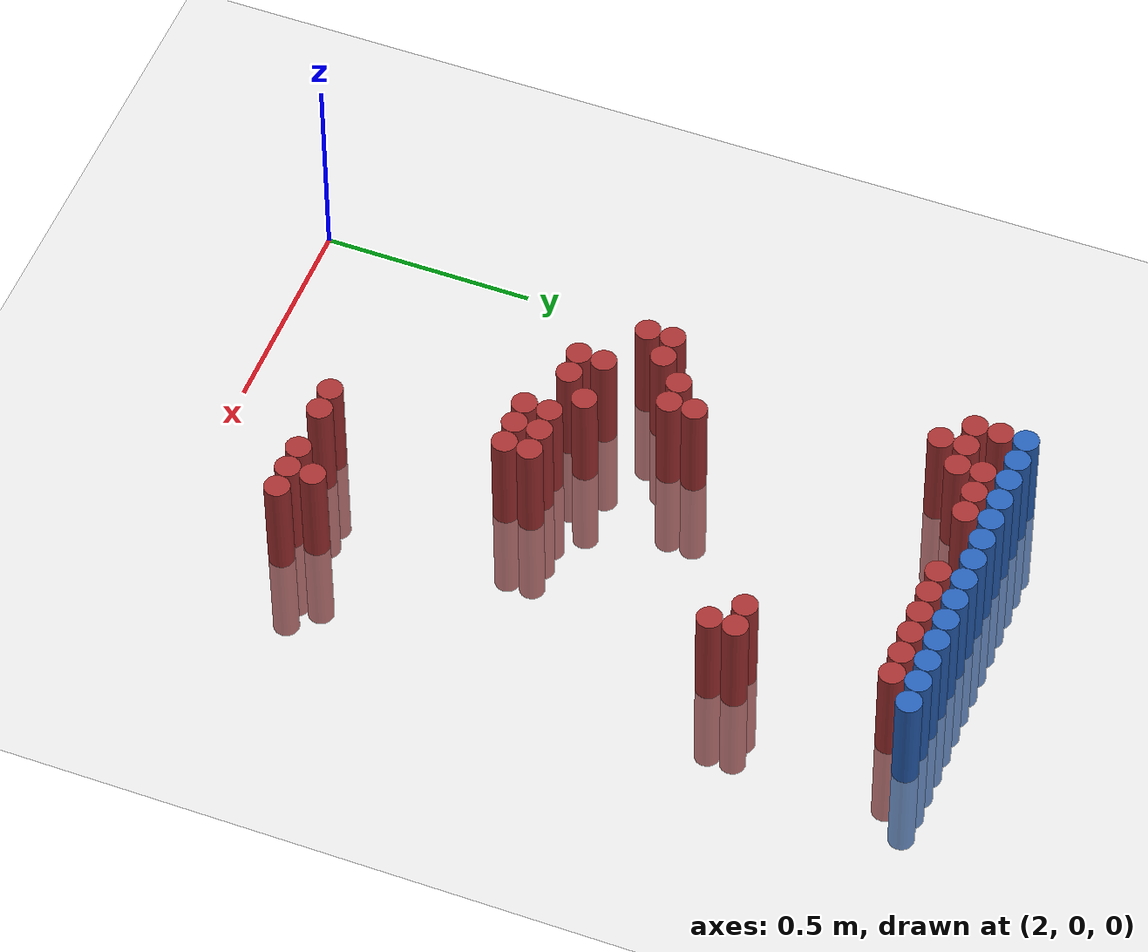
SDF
<sdf version="1.6">
 <world name="default">
  <model name="ground_plane">
   <static>1</static>
   <link name="link">
    <collision name="collision">
     <geometry><plane><normal>0 0 1</normal><size>100 100</size></plane></geometry>
     <surface><friction><ode><mu>100</mu><mu2>50</mu2></ode></friction></surface>
    </collision>
    <visual name="visual">
     <cast_shadows>0</cast_shadows>
     <geometry><plane><normal>0 0 1</normal><size>100 100</size></plane></geometry>
     <material>
      <script><uri>file://media/materials/scripts/gazebo.material</uri><name>Gazebo/Grey</name></script>
     </material>
    </visual>
   </link>
  </model>
  <model name="unit_cylinder_97">
   <static>1</static>
   <pose>2.190000 1.770000 0.000000 0.000000 0.000000 0.000000</pose>
   <link name="link">
    <inertial>
     <mass>1</mass>
     <inertia><ixx>0.145833</ixx><ixy>0</ixy><ixz>0</ixz><iyy>0.145833</iyy><iyz>0</iyz><izz>0.125</izz></inertia>
    </inertial>
    <collision name="collision">
     <geometry><cylinder><radius>0.030000</radius><length>0.5</length></cylinder></geometry>
    </collision>
    <visual name="visual">
     <geometry><cylinder><radius>0.030000</radius><length>0.5</length></cylinder></geometry>
     <material>
      <ambient>0.152000 0.379000 0.720000 1</ambient>
      <diffuse>0.152000 0.379000 0.720000 1</diffuse>
     </material>
     <material>
      <script><name>Gazebo/Grey</name><uri>file://media/materials/scripts/gazebo.material</uri></script>
     </material>
    </visual>
   </link>
  </model>
  <model name="unit_cylinder_98">
   <static>1</static>
   <pose>2.250000 1.770000 0.000000 0.000000 0.000000 0.000000</pose>
   <link name="link">
    <inertial>
     <mass>1</mass>
     <inertia><ixx>0.145833</ixx><ixy>0</ixy><ixz>0</ixz><iyy>0.145833</iyy><iyz>0</iyz><izz>0.125</izz></inertia>
    </inertial>
    <collision name="collision">
     <geometry><cylinder><radius>0.030000</radius><length>0.5</length></cylinder></geometry>
    </collision>
    <visual name="visual">
     <geometry><cylinder><radius>0.030000</radius><length>0.5</length></cylinder></geometry>
     <material>
      <ambient>0.152000 0.379000 0.720000 1</ambient>
      <diffuse>0.152000 0.379000 0.720000 1</diffuse>
     </material>
     <material>
      <script><name>Gazebo/Grey</name><uri>file://media/materials/scripts/gazebo.material</uri></script>
     </material>
    </visual>
   </link>
  </model>
  <model name="unit_cylinder_99">
   <static>1</static>
   <pose>2.310000 1.770000 0.000000 0.000000 0.000000 0.000000</pose>
   <link name="link">
    <inertial>
     <mass>1</mass>
     <inertia><ixx>0.145833</ixx><ixy>0</ixy><ixz>0</ixz><iyy>0.145833</iyy><iyz>0</iyz><izz>0.125</izz></inertia>
    </inertial>
    <collision name="collision">
     <geometry><cylinder><radius>0.030000</radius><length>0.5</length></cylinder></geometry>
    </collision>
    <visual name="visual">
     <geometry><cylinder><radius>0.030000</radius><length>0.5</length></cylinder></geometry>
     <material>
      <ambient>0.152000 0.379000 0.720000 1</ambient>
      <diffuse>0.152000 0.379000 0.720000 1</diffuse>
     </material>
     <material>
      <script><name>Gazebo/Grey</name><uri>file://media/materials/scripts/gazebo.material</uri></script>
     </material>
    </visual>
   </link>
  </model>
  <model name="unit_cylinder_100">
   <static>1</static>
   <pose>2.370000 1.770000 0.000000 0.000000 0.000000 0.000000</pose>
   <link name="link">
    <inertial>
     <mass>1</mass>
     <inertia><ixx>0.145833</ixx><ixy>0</ixy><ixz>0</ixz><iyy>0.145833</iyy><iyz>0</iyz><izz>0.125</izz></inertia>
    </inertial>
    <collision name="collision">
     <geometry><cylinder><radius>0.030000</radius><length>0.5</length></cylinder></geometry>
    </collision>
    <visual name="visual">
     <geometry><cylinder><radius>0.030000</radius><length>0.5</length></cylinder></geometry>
     <material>
      <ambient>0.152000 0.379000 0.720000 1</ambient>
      <diffuse>0.152000 0.379000 0.720000 1</diffuse>
     </material>
     <material>
      <script><name>Gazebo/Grey</name><uri>file://media/materials/scripts/gazebo.material</uri></script>
     </material>
    </visual>
   </link>
  </model>
  <model name="unit_cylinder_101">
   <static>1</static>
   <pose>2.430000 1.770000 0.000000 0.000000 0.000000 0.000000</pose>
   <link name="link">
    <inertial>
     <mass>1</mass>
     <inertia><ixx>0.145833</ixx><ixy>0</ixy><ixz>0</ixz><iyy>0.145833</iyy><iyz>0</iyz><izz>0.125</izz></inertia>
    </inertial>
    <collision name="collision">
     <geometry><cylinder><radius>0.030000</radius><length>0.5</length></cylinder></geometry>
    </collision>
    <visual name="visual">
     <geometry><cylinder><radius>0.030000</radius><length>0.5</length></cylinder></geometry>
     <material>
      <ambient>0.152000 0.379000 0.720000 1</ambient>
      <diffuse>0.152000 0.379000 0.720000 1</diffuse>
     </material>
     <material>
      <script><name>Gazebo/Grey</name><uri>file://media/materials/scripts/gazebo.material</uri></script>
     </material>
    </visual>
   </link>
  </model>
  <model name="unit_cylinder_102">
   <static>1</static>
   <pose>2.490000 1.770000 0.000000 0.000000 0.000000 0.000000</pose>
   <link name="link">
    <inertial>
     <mass>1</mass>
     <inertia><ixx>0.145833</ixx><ixy>0</ixy><ixz>0</ixz><iyy>0.145833</iyy><iyz>0</iyz><izz>0.125</izz></inertia>
    </inertial>
    <collision name="collision">
     <geometry><cylinder><radius>0.030000</radius><length>0.5</length></cylinder></geometry>
    </collision>
    <visual name="visual">
     <geometry><cylinder><radius>0.030000</radius><length>0.5</length></cylinder></geometry>
     <material>
      <ambient>0.152000 0.379000 0.720000 1</ambient>
      <diffuse>0.152000 0.379000 0.720000 1</diffuse>
     </material>
     <material>
      <script><name>Gazebo/Grey</name><uri>file://media/materials/scripts/gazebo.material</uri></script>
     </material>
    </visual>
   </link>
  </model>
  <model name="unit_cylinder_103">
   <static>1</static>
   <pose>2.550000 1.770000 0.000000 0.000000 0.000000 0.000000</pose>
   <link name="link">
    <inertial>
     <mass>1</mass>
     <inertia><ixx>0.145833</ixx><ixy>0</ixy><ixz>0</ixz><iyy>0.145833</iyy><iyz>0</iyz><izz>0.125</izz></inertia>
    </inertial>
    <collision name="collision">
     <geometry><cylinder><radius>0.030000</radius><length>0.5</length></cylinder></geometry>
    </collision>
    <visual name="visual">
     <geometry><cylinder><radius>0.030000</radius><length>0.5</length></cylinder></geometry>
     <material>
      <ambient>0.152000 0.379000 0.720000 1</ambient>
      <diffuse>0.152000 0.379000 0.720000 1</diffuse>
     </material>
     <material>
      <script><name>Gazebo/Grey</name><uri>file://media/materials/scripts/gazebo.material</uri></script>
     </material>
    </visual>
   </link>
  </model>
  <model name="unit_cylinder_104">
   <static>1</static>
   <pose>2.610000 1.770000 0.000000 0.000000 0.000000 0.000000</pose>
   <link name="link">
    <inertial>
     <mass>1</mass>
     <inertia><ixx>0.145833</ixx><ixy>0</ixy><ixz>0</ixz><iyy>0.145833</iyy><iyz>0</iyz><izz>0.125</izz></inertia>
    </inertial>
    <collision name="collision">
     <geometry><cylinder><radius>0.030000</radius><length>0.5</length></cylinder></geometry>
    </collision>
    <visual name="visual">
     <geometry><cylinder><radius>0.030000</radius><length>0.5</length></cylinder></geometry>
     <material>
      <ambient>0.152000 0.379000 0.720000 1</ambient>
      <diffuse>0.152000 0.379000 0.720000 1</diffuse>
     </material>
     <material>
      <script><name>Gazebo/Grey</name><uri>file://media/materials/scripts/gazebo.material</uri></script>
     </material>
    </visual>
   </link>
  </model>
  <model name="unit_cylinder_105">
   <static>1</static>
   <pose>2.670000 1.770000 0.000000 0.000000 0.000000 0.000000</pose>
   <link name="link">
    <inertial>
     <mass>1</mass>
     <inertia><ixx>0.145833</ixx><ixy>0</ixy><ixz>0</ixz><iyy>0.145833</iyy><iyz>0</iyz><izz>0.125</izz></inertia>
    </inertial>
    <collision name="collision">
     <geometry><cylinder><radius>0.030000</radius><length>0.5</length></cylinder></geometry>
    </collision>
    <visual name="visual">
     <geometry><cylinder><radius>0.030000</radius><length>0.5</length></cylinder></geometry>
     <material>
      <ambient>0.152000 0.379000 0.720000 1</ambient>
      <diffuse>0.152000 0.379000 0.720000 1</diffuse>
     </material>
     <material>
      <script><name>Gazebo/Grey</name><uri>file://media/materials/scripts/gazebo.material</uri></script>
     </material>
    </visual>
   </link>
  </model>
  <model name="unit_cylinder_106">
   <static>1</static>
   <pose>2.730000 1.770000 0.000000 0.000000 0.000000 0.000000</pose>
   <link name="link">
    <inertial>
     <mass>1</mass>
     <inertia><ixx>0.145833</ixx><ixy>0</ixy><ixz>0</ixz><iyy>0.145833</iyy><iyz>0</iyz><izz>0.125</izz></inertia>
    </inertial>
    <collision name="collision">
     <geometry><cylinder><radius>0.030000</radius><length>0.5</length></cylinder></geometry>
    </collision>
    <visual name="visual">
     <geometry><cylinder><radius>0.030000</radius><length>0.5</length></cylinder></geometry>
     <material>
      <ambient>0.152000 0.379000 0.720000 1</ambient>
      <diffuse>0.152000 0.379000 0.720000 1</diffuse>
     </material>
     <material>
      <script><name>Gazebo/Grey</name><uri>file://media/materials/scripts/gazebo.material</uri></script>
     </material>
    </visual>
   </link>
  </model>
  <model name="unit_cylinder_107">
   <static>1</static>
   <pose>2.790000 1.770000 0.000000 0.000000 0.000000 0.000000</pose>
   <link name="link">
    <inertial>
     <mass>1</mass>
     <inertia><ixx>0.145833</ixx><ixy>0</ixy><ixz>0</ixz><iyy>0.145833</iyy><iyz>0</iyz><izz>0.125</izz></inertia>
    </inertial>
    <collision name="collision">
     <geometry><cylinder><radius>0.030000</radius><length>0.5</length></cylinder></geometry>
    </collision>
    <visual name="visual">
     <geometry><cylinder><radius>0.030000</radius><length>0.5</length></cylinder></geometry>
     <material>
      <ambient>0.152000 0.379000 0.720000 1</ambient>
      <diffuse>0.152000 0.379000 0.720000 1</diffuse>
     </material>
     <material>
      <script><name>Gazebo/Grey</name><uri>file://media/materials/scripts/gazebo.material</uri></script>
     </material>
    </visual>
   </link>
  </model>
  <model name="unit_cylinder_108">
   <static>1</static>
   <pose>2.850000 1.770000 0.000000 0.000000 0.000000 0.000000</pose>
   <link name="link">
    <inertial>
     <mass>1</mass>
     <inertia><ixx>0.145833</ixx><ixy>0</ixy><ixz>0</ixz><iyy>0.145833</iyy><iyz>0</iyz><izz>0.125</izz></inertia>
    </inertial>
    <collision name="collision">
     <geometry><cylinder><radius>0.030000</radius><length>0.5</length></cylinder></geometry>
    </collision>
    <visual name="visual">
     <geometry><cylinder><radius>0.030000</radius><length>0.5</length></cylinder></geometry>
     <material>
      <ambient>0.152000 0.379000 0.720000 1</ambient>
      <diffuse>0.152000 0.379000 0.720000 1</diffuse>
     </material>
     <material>
      <script><name>Gazebo/Grey</name><uri>file://media/materials/scripts/gazebo.material</uri></script>
     </material>
    </visual>
   </link>
  </model>
  <model name="unit_cylinder_109">
   <static>1</static>
   <pose>2.910000 1.770000 0.000000 0.000000 0.000000 0.000000</pose>
   <link name="link">
    <inertial>
     <mass>1</mass>
     <inertia><ixx>0.145833</ixx><ixy>0</ixy><ixz>0</ixz><iyy>0.145833</iyy><iyz>0</iyz><izz>0.125</izz></inertia>
    </inertial>
    <collision name="collision">
     <geometry><cylinder><radius>0.030000</radius><length>0.5</length></cylinder></geometry>
    </collision>
    <visual name="visual">
     <geometry><cylinder><radius>0.030000</radius><length>0.5</length></cylinder></geometry>
     <material>
      <ambient>0.152000 0.379000 0.720000 1</ambient>
      <diffuse>0.152000 0.379000 0.720000 1</diffuse>
     </material>
     <material>
      <script><name>Gazebo/Grey</name><uri>file://media/materials/scripts/gazebo.material</uri></script>
     </material>
    </visual>
   </link>
  </model>
  <model name="unit_cylinder_110">
   <static>1</static>
   <pose>2.970000 1.770000 0.000000 0.000000 0.000000 0.000000</pose>
   <link name="link">
    <inertial>
     <mass>1</mass>
     <inertia><ixx>0.145833</ixx><ixy>0</ixy><ixz>0</ixz><iyy>0.145833</iyy><iyz>0</iyz><izz>0.125</izz></inertia>
    </inertial>
    <collision name="collision">
     <geometry><cylinder><radius>0.030000</radius><length>0.5</length></cylinder></geometry>
    </collision>
    <visual name="visual">
     <geometry><cylinder><radius>0.030000</radius><length>0.5</length></cylinder></geometry>
     <material>
      <ambient>0.152000 0.379000 0.720000 1</ambient>
      <diffuse>0.152000 0.379000 0.720000 1</diffuse>
     </material>
     <material>
      <script><name>Gazebo/Grey</name><uri>file://media/materials/scripts/gazebo.material</uri></script>
     </material>
    </visual>
   </link>
  </model>
  <model name="unit_cylinder_126">
   <static>1</static>
   <pose>2.190000 1.710000 0.000000 0.000000 0.000000 0.000000</pose>
   <link name="link">
    <inertial>
     <mass>1</mass>
     <inertia><ixx>0.145833</ixx><ixy>0</ixy><ixz>0</ixz><iyy>0.145833</iyy><iyz>0</iyz><izz>0.125</izz></inertia>
    </inertial>
    <collision name="collision">
     <geometry><cylinder><radius>0.030000</radius><length>0.5</length></cylinder></geometry>
    </collision>
    <visual name="visual">
     <geometry><cylinder><radius>0.030000</radius><length>0.5</length></cylinder></geometry>
     <material>
      <ambient>0.648000 0.192000 0.192000 1</ambient>
      <diffuse>0.648000 0.192000 0.192000 1</diffuse>
     </material>
     <material>
      <script><name>Gazebo/Grey</name><uri>file://media/materials/scripts/gazebo.material</uri></script>
     </material>
    </visual>
   </link>
  </model>
  <model name="unit_cylinder_127">
   <static>1</static>
   <pose>2.310000 1.710000 0.000000 0.000000 0.000000 0.000000</pose>
   <link name="link">
    <inertial>
     <mass>1</mass>
     <inertia><ixx>0.145833</ixx><ixy>0</ixy><ixz>0</ixz><iyy>0.145833</iyy><iyz>0</iyz><izz>0.125</izz></inertia>
    </inertial>
    <collision name="collision">
     <geometry><cylinder><radius>0.030000</radius><length>0.5</length></cylinder></geometry>
    </collision>
    <visual name="visual">
     <geometry><cylinder><radius>0.030000</radius><length>0.5</length></cylinder></geometry>
     <material>
      <ambient>0.648000 0.192000 0.192000 1</ambient>
      <diffuse>0.648000 0.192000 0.192000 1</diffuse>
     </material>
     <material>
      <script><name>Gazebo/Grey</name><uri>file://media/materials/scripts/gazebo.material</uri></script>
     </material>
    </visual>
   </link>
  </model>
  <model name="unit_cylinder_128">
   <static>1</static>
   <pose>2.370000 1.710000 0.000000 0.000000 0.000000 0.000000</pose>
   <link name="link">
    <inertial>
     <mass>1</mass>
     <inertia><ixx>0.145833</ixx><ixy>0</ixy><ixz>0</ixz><iyy>0.145833</iyy><iyz>0</iyz><izz>0.125</izz></inertia>
    </inertial>
    <collision name="collision">
     <geometry><cylinder><radius>0.030000</radius><length>0.5</length></cylinder></geometry>
    </collision>
    <visual name="visual">
     <geometry><cylinder><radius>0.030000</radius><length>0.5</length></cylinder></geometry>
     <material>
      <ambient>0.648000 0.192000 0.192000 1</ambient>
      <diffuse>0.648000 0.192000 0.192000 1</diffuse>
     </material>
     <material>
      <script><name>Gazebo/Grey</name><uri>file://media/materials/scripts/gazebo.material</uri></script>
     </material>
    </visual>
   </link>
  </model>
  <model name="unit_cylinder_129">
   <static>1</static>
   <pose>2.430000 1.710000 0.000000 0.000000 0.000000 0.000000</pose>
   <link name="link">
    <inertial>
     <mass>1</mass>
     <inertia><ixx>0.145833</ixx><ixy>0</ixy><ixz>0</ixz><iyy>0.145833</iyy><iyz>0</iyz><izz>0.125</izz></inertia>
    </inertial>
    <collision name="collision">
     <geometry><cylinder><radius>0.030000</radius><length>0.5</length></cylinder></geometry>
    </collision>
    <visual name="visual">
     <geometry><cylinder><radius>0.030000</radius><length>0.5</length></cylinder></geometry>
     <material>
      <ambient>0.648000 0.192000 0.192000 1</ambient>
      <diffuse>0.648000 0.192000 0.192000 1</diffuse>
     </material>
     <material>
      <script><name>Gazebo/Grey</name><uri>file://media/materials/scripts/gazebo.material</uri></script>
     </material>
    </visual>
   </link>
  </model>
  <model name="unit_cylinder_130">
   <static>1</static>
   <pose>2.610000 1.710000 0.000000 0.000000 0.000000 0.000000</pose>
   <link name="link">
    <inertial>
     <mass>1</mass>
     <inertia><ixx>0.145833</ixx><ixy>0</ixy><ixz>0</ixz><iyy>0.145833</iyy><iyz>0</iyz><izz>0.125</izz></inertia>
    </inertial>
    <collision name="collision">
     <geometry><cylinder><radius>0.030000</radius><length>0.5</length></cylinder></geometry>
    </collision>
    <visual name="visual">
     <geometry><cylinder><radius>0.030000</radius><length>0.5</length></cylinder></geometry>
     <material>
      <ambient>0.648000 0.192000 0.192000 1</ambient>
      <diffuse>0.648000 0.192000 0.192000 1</diffuse>
     </material>
     <material>
      <script><name>Gazebo/Grey</name><uri>file://media/materials/scripts/gazebo.material</uri></script>
     </material>
    </visual>
   </link>
  </model>
  <model name="unit_cylinder_131">
   <static>1</static>
   <pose>2.670000 1.710000 0.000000 0.000000 0.000000 0.000000</pose>
   <link name="link">
    <inertial>
     <mass>1</mass>
     <inertia><ixx>0.145833</ixx><ixy>0</ixy><ixz>0</ixz><iyy>0.145833</iyy><iyz>0</iyz><izz>0.125</izz></inertia>
    </inertial>
    <collision name="collision">
     <geometry><cylinder><radius>0.030000</radius><length>0.5</length></cylinder></geometry>
    </collision>
    <visual name="visual">
     <geometry><cylinder><radius>0.030000</radius><length>0.5</length></cylinder></geometry>
     <material>
      <ambient>0.648000 0.192000 0.192000 1</ambient>
      <diffuse>0.648000 0.192000 0.192000 1</diffuse>
     </material>
     <material>
      <script><name>Gazebo/Grey</name><uri>file://media/materials/scripts/gazebo.material</uri></script>
     </material>
    </visual>
   </link>
  </model>
  <model name="unit_cylinder_132">
   <static>1</static>
   <pose>2.730000 1.710000 0.000000 0.000000 0.000000 0.000000</pose>
   <link name="link">
    <inertial>
     <mass>1</mass>
     <inertia><ixx>0.145833</ixx><ixy>0</ixy><ixz>0</ixz><iyy>0.145833</iyy><iyz>0</iyz><izz>0.125</izz></inertia>
    </inertial>
    <collision name="collision">
     <geometry><cylinder><radius>0.030000</radius><length>0.5</length></cylinder></geometry>
    </collision>
    <visual name="visual">
     <geometry><cylinder><radius>0.030000</radius><length>0.5</length></cylinder></geometry>
     <material>
      <ambient>0.648000 0.192000 0.192000 1</ambient>
      <diffuse>0.648000 0.192000 0.192000 1</diffuse>
     </material>
     <material>
      <script><name>Gazebo/Grey</name><uri>file://media/materials/scripts/gazebo.material</uri></script>
     </material>
    </visual>
   </link>
  </model>
  <model name="unit_cylinder_133">
   <static>1</static>
   <pose>2.790000 1.710000 0.000000 0.000000 0.000000 0.000000</pose>
   <link name="link">
    <inertial>
     <mass>1</mass>
     <inertia><ixx>0.145833</ixx><ixy>0</ixy><ixz>0</ixz><iyy>0.145833</iyy><iyz>0</iyz><izz>0.125</izz></inertia>
    </inertial>
    <collision name="collision">
     <geometry><cylinder><radius>0.030000</radius><length>0.5</length></cylinder></geometry>
    </collision>
    <visual name="visual">
     <geometry><cylinder><radius>0.030000</radius><length>0.5</length></cylinder></geometry>
     <material>
      <ambient>0.648000 0.192000 0.192000 1</ambient>
      <diffuse>0.648000 0.192000 0.192000 1</diffuse>
     </material>
     <material>
      <script><name>Gazebo/Grey</name><uri>file://media/materials/scripts/gazebo.material</uri></script>
     </material>
    </visual>
   </link>
  </model>
  <model name="unit_cylinder_134">
   <static>1</static>
   <pose>2.850000 1.710000 0.000000 0.000000 0.000000 0.000000</pose>
   <link name="link">
    <inertial>
     <mass>1</mass>
     <inertia><ixx>0.145833</ixx><ixy>0</ixy><ixz>0</ixz><iyy>0.145833</iyy><iyz>0</iyz><izz>0.125</izz></inertia>
    </inertial>
    <collision name="collision">
     <geometry><cylinder><radius>0.030000</radius><length>0.5</length></cylinder></geometry>
    </collision>
    <visual name="visual">
     <geometry><cylinder><radius>0.030000</radius><length>0.5</length></cylinder></geometry>
     <material>
      <ambient>0.648000 0.192000 0.192000 1</ambient>
      <diffuse>0.648000 0.192000 0.192000 1</diffuse>
     </material>
     <material>
      <script><name>Gazebo/Grey</name><uri>file://media/materials/scripts/gazebo.material</uri></script>
     </material>
    </visual>
   </link>
  </model>
  <model name="unit_cylinder_135">
   <static>1</static>
   <pose>2.910000 1.710000 0.000000 0.000000 0.000000 0.000000</pose>
   <link name="link">
    <inertial>
     <mass>1</mass>
     <inertia><ixx>0.145833</ixx><ixy>0</ixy><ixz>0</ixz><iyy>0.145833</iyy><iyz>0</iyz><izz>0.125</izz></inertia>
    </inertial>
    <collision name="collision">
     <geometry><cylinder><radius>0.030000</radius><length>0.5</length></cylinder></geometry>
    </collision>
    <visual name="visual">
     <geometry><cylinder><radius>0.030000</radius><length>0.5</length></cylinder></geometry>
     <material>
      <ambient>0.648000 0.192000 0.192000 1</ambient>
      <diffuse>0.648000 0.192000 0.192000 1</diffuse>
     </material>
     <material>
      <script><name>Gazebo/Grey</name><uri>file://media/materials/scripts/gazebo.material</uri></script>
     </material>
    </visual>
   </link>
  </model>
  <model name="unit_cylinder_142">
   <static>1</static>
   <pose>2.190000 1.650000 0.000000 0.000000 0.000000 0.000000</pose>
   <link name="link">
    <inertial>
     <mass>1</mass>
     <inertia><ixx>0.145833</ixx><ixy>0</ixy><ixz>0</ixz><iyy>0.145833</iyy><iyz>0</iyz><izz>0.125</izz></inertia>
    </inertial>
    <collision name="collision">
     <geometry><cylinder><radius>0.030000</radius><length>0.5</length></cylinder></geometry>
    </collision>
    <visual name="visual">
     <geometry><cylinder><radius>0.030000</radius><length>0.5</length></cylinder></geometry>
     <material>
      <ambient>0.648000 0.192000 0.192000 1</ambient>
      <diffuse>0.648000 0.192000 0.192000 1</diffuse>
     </material>
     <material>
      <script><name>Gazebo/Grey</name><uri>file://media/materials/scripts/gazebo.material</uri></script>
     </material>
    </visual>
   </link>
  </model>
  <model name="unit_cylinder_143">
   <static>1</static>
   <pose>2.250000 1.650000 0.000000 0.000000 0.000000 0.000000</pose>
   <link name="link">
    <inertial>
     <mass>1</mass>
     <inertia><ixx>0.145833</ixx><ixy>0</ixy><ixz>0</ixz><iyy>0.145833</iyy><iyz>0</iyz><izz>0.125</izz></inertia>
    </inertial>
    <collision name="collision">
     <geometry><cylinder><radius>0.030000</radius><length>0.5</length></cylinder></geometry>
    </collision>
    <visual name="visual">
     <geometry><cylinder><radius>0.030000</radius><length>0.5</length></cylinder></geometry>
     <material>
      <ambient>0.648000 0.192000 0.192000 1</ambient>
      <diffuse>0.648000 0.192000 0.192000 1</diffuse>
     </material>
     <material>
      <script><name>Gazebo/Grey</name><uri>file://media/materials/scripts/gazebo.material</uri></script>
     </material>
    </visual>
   </link>
  </model>
  <model name="unit_cylinder_144">
   <static>1</static>
   <pose>2.310000 1.650000 0.000000 0.000000 0.000000 0.000000</pose>
   <link name="link">
    <inertial>
     <mass>1</mass>
     <inertia><ixx>0.145833</ixx><ixy>0</ixy><ixz>0</ixz><iyy>0.145833</iyy><iyz>0</iyz><izz>0.125</izz></inertia>
    </inertial>
    <collision name="collision">
     <geometry><cylinder><radius>0.030000</radius><length>0.5</length></cylinder></geometry>
    </collision>
    <visual name="visual">
     <geometry><cylinder><radius>0.030000</radius><length>0.5</length></cylinder></geometry>
     <material>
      <ambient>0.648000 0.192000 0.192000 1</ambient>
      <diffuse>0.648000 0.192000 0.192000 1</diffuse>
     </material>
     <material>
      <script><name>Gazebo/Grey</name><uri>file://media/materials/scripts/gazebo.material</uri></script>
     </material>
    </visual>
   </link>
  </model>
  <model name="unit_cylinder_151">
   <static>1</static>
   <pose>2.250000 1.590000 0.000000 0.000000 0.000000 0.000000</pose>
   <link name="link">
    <inertial>
     <mass>1</mass>
     <inertia><ixx>0.145833</ixx><ixy>0</ixy><ixz>0</ixz><iyy>0.145833</iyy><iyz>0</iyz><izz>0.125</izz></inertia>
    </inertial>
    <collision name="collision">
     <geometry><cylinder><radius>0.030000</radius><length>0.5</length></cylinder></geometry>
    </collision>
    <visual name="visual">
     <geometry><cylinder><radius>0.030000</radius><length>0.5</length></cylinder></geometry>
     <material>
      <ambient>0.648000 0.192000 0.192000 1</ambient>
      <diffuse>0.648000 0.192000 0.192000 1</diffuse>
     </material>
     <material>
      <script><name>Gazebo/Grey</name><uri>file://media/materials/scripts/gazebo.material</uri></script>
     </material>
    </visual>
   </link>
  </model>
  <model name="unit_cylinder_161">
   <static>1</static>
   <pose>2.850000 1.350000 0.000000 0.000000 0.000000 0.000000</pose>
   <link name="link">
    <inertial>
     <mass>1</mass>
     <inertia><ixx>0.145833</ixx><ixy>0</ixy><ixz>0</ixz><iyy>0.145833</iyy><iyz>0</iyz><izz>0.125</izz></inertia>
    </inertial>
    <collision name="collision">
     <geometry><cylinder><radius>0.030000</radius><length>0.5</length></cylinder></geometry>
    </collision>
    <visual name="visual">
     <geometry><cylinder><radius>0.030000</radius><length>0.5</length></cylinder></geometry>
     <material>
      <ambient>0.648000 0.192000 0.192000 1</ambient>
      <diffuse>0.648000 0.192000 0.192000 1</diffuse>
     </material>
     <material>
      <script><name>Gazebo/Grey</name><uri>file://media/materials/scripts/gazebo.material</uri></script>
     </material>
    </visual>
   </link>
  </model>
  <model name="unit_cylinder_162">
   <static>1</static>
   <pose>2.910000 1.350000 0.000000 0.000000 0.000000 0.000000</pose>
   <link name="link">
    <inertial>
     <mass>1</mass>
     <inertia><ixx>0.145833</ixx><ixy>0</ixy><ixz>0</ixz><iyy>0.145833</iyy><iyz>0</iyz><izz>0.125</izz></inertia>
    </inertial>
    <collision name="collision">
     <geometry><cylinder><radius>0.030000</radius><length>0.5</length></cylinder></geometry>
    </collision>
    <visual name="visual">
     <geometry><cylinder><radius>0.030000</radius><length>0.5</length></cylinder></geometry>
     <material>
      <ambient>0.648000 0.192000 0.192000 1</ambient>
      <diffuse>0.648000 0.192000 0.192000 1</diffuse>
     </material>
     <material>
      <script><name>Gazebo/Grey</name><uri>file://media/materials/scripts/gazebo.material</uri></script>
     </material>
    </visual>
   </link>
  </model>
  <model name="unit_cylinder_163">
   <static>1</static>
   <pose>2.910000 1.290000 0.000000 0.000000 0.000000 0.000000</pose>
   <link name="link">
    <inertial>
     <mass>1</mass>
     <inertia><ixx>0.145833</ixx><ixy>0</ixy><ixz>0</ixz><iyy>0.145833</iyy><iyz>0</iyz><izz>0.125</izz></inertia>
    </inertial>
    <collision name="collision">
     <geometry><cylinder><radius>0.030000</radius><length>0.5</length></cylinder></geometry>
    </collision>
    <visual name="visual">
     <geometry><cylinder><radius>0.030000</radius><length>0.5</length></cylinder></geometry>
     <material>
      <ambient>0.648000 0.192000 0.192000 1</ambient>
      <diffuse>0.648000 0.192000 0.192000 1</diffuse>
     </material>
     <material>
      <script><name>Gazebo/Grey</name><uri>file://media/materials/scripts/gazebo.material</uri></script>
     </material>
    </visual>
   </link>
  </model>
  <model name="unit_cylinder_170">
   <static>1</static>
   <pose>2.370000 1.050000 0.000000 0.000000 0.000000 0.000000</pose>
   <link name="link">
    <inertial>
     <mass>1</mass>
     <inertia><ixx>0.145833</ixx><ixy>0</ixy><ixz>0</ixz><iyy>0.145833</iyy><iyz>0</iyz><izz>0.125</izz></inertia>
    </inertial>
    <collision name="collision">
     <geometry><cylinder><radius>0.030000</radius><length>0.5</length></cylinder></geometry>
    </collision>
    <visual name="visual">
     <geometry><cylinder><radius>0.030000</radius><length>0.5</length></cylinder></geometry>
     <material>
      <ambient>0.648000 0.192000 0.192000 1</ambient>
      <diffuse>0.648000 0.192000 0.192000 1</diffuse>
     </material>
     <material>
      <script><name>Gazebo/Grey</name><uri>file://media/materials/scripts/gazebo.material</uri></script>
     </material>
    </visual>
   </link>
  </model>
  <model name="unit_cylinder_173">
   <static>1</static>
   <pose>2.310000 0.990000 0.000000 0.000000 0.000000 0.000000</pose>
   <link name="link">
    <inertial>
     <mass>1</mass>
     <inertia><ixx>0.145833</ixx><ixy>0</ixy><ixz>0</ixz><iyy>0.145833</iyy><iyz>0</iyz><izz>0.125</izz></inertia>
    </inertial>
    <collision name="collision">
     <geometry><cylinder><radius>0.030000</radius><length>0.5</length></cylinder></geometry>
    </collision>
    <visual name="visual">
     <geometry><cylinder><radius>0.030000</radius><length>0.5</length></cylinder></geometry>
     <material>
      <ambient>0.648000 0.192000 0.192000 1</ambient>
      <diffuse>0.648000 0.192000 0.192000 1</diffuse>
     </material>
     <material>
      <script><name>Gazebo/Grey</name><uri>file://media/materials/scripts/gazebo.material</uri></script>
     </material>
    </visual>
   </link>
  </model>
  <model name="unit_cylinder_174">
   <static>1</static>
   <pose>2.370000 0.990000 0.000000 0.000000 0.000000 0.000000</pose>
   <link name="link">
    <inertial>
     <mass>1</mass>
     <inertia><ixx>0.145833</ixx><ixy>0</ixy><ixz>0</ixz><iyy>0.145833</iyy><iyz>0</iyz><izz>0.125</izz></inertia>
    </inertial>
    <collision name="collision">
     <geometry><cylinder><radius>0.030000</radius><length>0.5</length></cylinder></geometry>
    </collision>
    <visual name="visual">
     <geometry><cylinder><radius>0.030000</radius><length>0.5</length></cylinder></geometry>
     <material>
      <ambient>0.648000 0.192000 0.192000 1</ambient>
      <diffuse>0.648000 0.192000 0.192000 1</diffuse>
     </material>
     <material>
      <script><name>Gazebo/Grey</name><uri>file://media/materials/scripts/gazebo.material</uri></script>
     </material>
    </visual>
   </link>
  </model>
  <model name="unit_cylinder_175">
   <static>1</static>
   <pose>2.190000 0.930000 0.000000 0.000000 0.000000 0.000000</pose>
   <link name="link">
    <inertial>
     <mass>1</mass>
     <inertia><ixx>0.145833</ixx><ixy>0</ixy><ixz>0</ixz><iyy>0.145833</iyy><iyz>0</iyz><izz>0.125</izz></inertia>
    </inertial>
    <collision name="collision">
     <geometry><cylinder><radius>0.030000</radius><length>0.5</length></cylinder></geometry>
    </collision>
    <visual name="visual">
     <geometry><cylinder><radius>0.030000</radius><length>0.5</length></cylinder></geometry>
     <material>
      <ambient>0.648000 0.192000 0.192000 1</ambient>
      <diffuse>0.648000 0.192000 0.192000 1</diffuse>
     </material>
     <material>
      <script><name>Gazebo/Grey</name><uri>file://media/materials/scripts/gazebo.material</uri></script>
     </material>
    </visual>
   </link>
  </model>
  <model name="unit_cylinder_176">
   <static>1</static>
   <pose>2.250000 0.930000 0.000000 0.000000 0.000000 0.000000</pose>
   <link name="link">
    <inertial>
     <mass>1</mass>
     <inertia><ixx>0.145833</ixx><ixy>0</ixy><ixz>0</ixz><iyy>0.145833</iyy><iyz>0</iyz><izz>0.125</izz></inertia>
    </inertial>
    <collision name="collision">
     <geometry><cylinder><radius>0.030000</radius><length>0.5</length></cylinder></geometry>
    </collision>
    <visual name="visual">
     <geometry><cylinder><radius>0.030000</radius><length>0.5</length></cylinder></geometry>
     <material>
      <ambient>0.648000 0.192000 0.192000 1</ambient>
      <diffuse>0.648000 0.192000 0.192000 1</diffuse>
     </material>
     <material>
      <script><name>Gazebo/Grey</name><uri>file://media/materials/scripts/gazebo.material</uri></script>
     </material>
    </visual>
   </link>
  </model>
  <model name="unit_cylinder_182">
   <static>1</static>
   <pose>2.190000 0.870000 0.000000 0.000000 0.000000 0.000000</pose>
   <link name="link">
    <inertial>
     <mass>1</mass>
     <inertia><ixx>0.145833</ixx><ixy>0</ixy><ixz>0</ixz><iyy>0.145833</iyy><iyz>0</iyz><izz>0.125</izz></inertia>
    </inertial>
    <collision name="collision">
     <geometry><cylinder><radius>0.030000</radius><length>0.5</length></cylinder></geometry>
    </collision>
    <visual name="visual">
     <geometry><cylinder><radius>0.030000</radius><length>0.5</length></cylinder></geometry>
     <material>
      <ambient>0.648000 0.192000 0.192000 1</ambient>
      <diffuse>0.648000 0.192000 0.192000 1</diffuse>
     </material>
     <material>
      <script><name>Gazebo/Grey</name><uri>file://media/materials/scripts/gazebo.material</uri></script>
     </material>
    </visual>
   </link>
  </model>
  <model name="unit_cylinder_190">
   <static>1</static>
   <pose>2.310000 0.810000 0.000000 0.000000 0.000000 0.000000</pose>
   <link name="link">
    <inertial>
     <mass>1</mass>
     <inertia><ixx>0.145833</ixx><ixy>0</ixy><ixz>0</ixz><iyy>0.145833</iyy><iyz>0</iyz><izz>0.125</izz></inertia>
    </inertial>
    <collision name="collision">
     <geometry><cylinder><radius>0.030000</radius><length>0.5</length></cylinder></geometry>
    </collision>
    <visual name="visual">
     <geometry><cylinder><radius>0.030000</radius><length>0.5</length></cylinder></geometry>
     <material>
      <ambient>0.648000 0.192000 0.192000 1</ambient>
      <diffuse>0.648000 0.192000 0.192000 1</diffuse>
     </material>
     <material>
      <script><name>Gazebo/Grey</name><uri>file://media/materials/scripts/gazebo.material</uri></script>
     </material>
    </visual>
   </link>
  </model>
  <model name="unit_cylinder_191">
   <static>1</static>
   <pose>2.430000 0.810000 0.000000 0.000000 0.000000 0.000000</pose>
   <link name="link">
    <inertial>
     <mass>1</mass>
     <inertia><ixx>0.145833</ixx><ixy>0</ixy><ixz>0</ixz><iyy>0.145833</iyy><iyz>0</iyz><izz>0.125</izz></inertia>
    </inertial>
    <collision name="collision">
     <geometry><cylinder><radius>0.030000</radius><length>0.5</length></cylinder></geometry>
    </collision>
    <visual name="visual">
     <geometry><cylinder><radius>0.030000</radius><length>0.5</length></cylinder></geometry>
     <material>
      <ambient>0.648000 0.192000 0.192000 1</ambient>
      <diffuse>0.648000 0.192000 0.192000 1</diffuse>
     </material>
     <material>
      <script><name>Gazebo/Grey</name><uri>file://media/materials/scripts/gazebo.material</uri></script>
     </material>
    </visual>
   </link>
  </model>
  <model name="unit_cylinder_193">
   <static>1</static>
   <pose>2.310000 0.750000 0.000000 0.000000 0.000000 0.000000</pose>
   <link name="link">
    <inertial>
     <mass>1</mass>
     <inertia><ixx>0.145833</ixx><ixy>0</ixy><ixz>0</ixz><iyy>0.145833</iyy><iyz>0</iyz><izz>0.125</izz></inertia>
    </inertial>
    <collision name="collision">
     <geometry><cylinder><radius>0.030000</radius><length>0.5</length></cylinder></geometry>
    </collision>
    <visual name="visual">
     <geometry><cylinder><radius>0.030000</radius><length>0.5</length></cylinder></geometry>
     <material>
      <ambient>0.648000 0.192000 0.192000 1</ambient>
      <diffuse>0.648000 0.192000 0.192000 1</diffuse>
     </material>
     <material>
      <script><name>Gazebo/Grey</name><uri>file://media/materials/scripts/gazebo.material</uri></script>
     </material>
    </visual>
   </link>
  </model>
  <model name="unit_cylinder_194">
   <static>1</static>
   <pose>2.370000 0.750000 0.000000 0.000000 0.000000 0.000000</pose>
   <link name="link">
    <inertial>
     <mass>1</mass>
     <inertia><ixx>0.145833</ixx><ixy>0</ixy><ixz>0</ixz><iyy>0.145833</iyy><iyz>0</iyz><izz>0.125</izz></inertia>
    </inertial>
    <collision name="collision">
     <geometry><cylinder><radius>0.030000</radius><length>0.5</length></cylinder></geometry>
    </collision>
    <visual name="visual">
     <geometry><cylinder><radius>0.030000</radius><length>0.5</length></cylinder></geometry>
     <material>
      <ambient>0.648000 0.192000 0.192000 1</ambient>
      <diffuse>0.648000 0.192000 0.192000 1</diffuse>
     </material>
     <material>
      <script><name>Gazebo/Grey</name><uri>file://media/materials/scripts/gazebo.material</uri></script>
     </material>
    </visual>
   </link>
  </model>
  <model name="unit_cylinder_195">
   <static>1</static>
   <pose>2.490000 0.750000 0.000000 0.000000 0.000000 0.000000</pose>
   <link name="link">
    <inertial>
     <mass>1</mass>
     <inertia><ixx>0.145833</ixx><ixy>0</ixy><ixz>0</ixz><iyy>0.145833</iyy><iyz>0</iyz><izz>0.125</izz></inertia>
    </inertial>
    <collision name="collision">
     <geometry><cylinder><radius>0.030000</radius><length>0.5</length></cylinder></geometry>
    </collision>
    <visual name="visual">
     <geometry><cylinder><radius>0.030000</radius><length>0.5</length></cylinder></geometry>
     <material>
      <ambient>0.648000 0.192000 0.192000 1</ambient>
      <diffuse>0.648000 0.192000 0.192000 1</diffuse>
     </material>
     <material>
      <script><name>Gazebo/Grey</name><uri>file://media/materials/scripts/gazebo.material</uri></script>
     </material>
    </visual>
   </link>
  </model>
  <model name="unit_cylinder_196">
   <static>1</static>
   <pose>2.550000 0.750000 0.000000 0.000000 0.000000 0.000000</pose>
   <link name="link">
    <inertial>
     <mass>1</mass>
     <inertia><ixx>0.145833</ixx><ixy>0</ixy><ixz>0</ixz><iyy>0.145833</iyy><iyz>0</iyz><izz>0.125</izz></inertia>
    </inertial>
    <collision name="collision">
     <geometry><cylinder><radius>0.030000</radius><length>0.5</length></cylinder></geometry>
    </collision>
    <visual name="visual">
     <geometry><cylinder><radius>0.030000</radius><length>0.5</length></cylinder></geometry>
     <material>
      <ambient>0.648000 0.192000 0.192000 1</ambient>
      <diffuse>0.648000 0.192000 0.192000 1</diffuse>
     </material>
     <material>
      <script><name>Gazebo/Grey</name><uri>file://media/materials/scripts/gazebo.material</uri></script>
     </material>
    </visual>
   </link>
  </model>
  <model name="unit_cylinder_197">
   <static>1</static>
   <pose>2.610000 0.750000 0.000000 0.000000 0.000000 0.000000</pose>
   <link name="link">
    <inertial>
     <mass>1</mass>
     <inertia><ixx>0.145833</ixx><ixy>0</ixy><ixz>0</ixz><iyy>0.145833</iyy><iyz>0</iyz><izz>0.125</izz></inertia>
    </inertial>
    <collision name="collision">
     <geometry><cylinder><radius>0.030000</radius><length>0.5</length></cylinder></geometry>
    </collision>
    <visual name="visual">
     <geometry><cylinder><radius>0.030000</radius><length>0.5</length></cylinder></geometry>
     <material>
      <ambient>0.648000 0.192000 0.192000 1</ambient>
      <diffuse>0.648000 0.192000 0.192000 1</diffuse>
     </material>
     <material>
      <script><name>Gazebo/Grey</name><uri>file://media/materials/scripts/gazebo.material</uri></script>
     </material>
    </visual>
   </link>
  </model>
  <model name="unit_cylinder_198">
   <static>1</static>
   <pose>2.490000 0.690000 0.000000 0.000000 0.000000 0.000000</pose>
   <link name="link">
    <inertial>
     <mass>1</mass>
     <inertia><ixx>0.145833</ixx><ixy>0</ixy><ixz>0</ixz><iyy>0.145833</iyy><iyz>0</iyz><izz>0.125</izz></inertia>
    </inertial>
    <collision name="collision">
     <geometry><cylinder><radius>0.030000</radius><length>0.5</length></cylinder></geometry>
    </collision>
    <visual name="visual">
     <geometry><cylinder><radius>0.030000</radius><length>0.5</length></cylinder></geometry>
     <material>
      <ambient>0.648000 0.192000 0.192000 1</ambient>
      <diffuse>0.648000 0.192000 0.192000 1</diffuse>
     </material>
     <material>
      <script><name>Gazebo/Grey</name><uri>file://media/materials/scripts/gazebo.material</uri></script>
     </material>
    </visual>
   </link>
  </model>
  <model name="unit_cylinder_199">
   <static>1</static>
   <pose>2.550000 0.690000 0.000000 0.000000 0.000000 0.000000</pose>
   <link name="link">
    <inertial>
     <mass>1</mass>
     <inertia><ixx>0.145833</ixx><ixy>0</ixy><ixz>0</ixz><iyy>0.145833</iyy><iyz>0</iyz><izz>0.125</izz></inertia>
    </inertial>
    <collision name="collision">
     <geometry><cylinder><radius>0.030000</radius><length>0.5</length></cylinder></geometry>
    </collision>
    <visual name="visual">
     <geometry><cylinder><radius>0.030000</radius><length>0.5</length></cylinder></geometry>
     <material>
      <ambient>0.648000 0.192000 0.192000 1</ambient>
      <diffuse>0.648000 0.192000 0.192000 1</diffuse>
     </material>
     <material>
      <script><name>Gazebo/Grey</name><uri>file://media/materials/scripts/gazebo.material</uri></script>
     </material>
    </visual>
   </link>
  </model>
  <model name="unit_cylinder_200">
   <static>1</static>
   <pose>2.610000 0.690000 0.000000 0.000000 0.000000 0.000000</pose>
   <link name="link">
    <inertial>
     <mass>1</mass>
     <inertia><ixx>0.145833</ixx><ixy>0</ixy><ixz>0</ixz><iyy>0.145833</iyy><iyz>0</iyz><izz>0.125</izz></inertia>
    </inertial>
    <collision name="collision">
     <geometry><cylinder><radius>0.030000</radius><length>0.5</length></cylinder></geometry>
    </collision>
    <visual name="visual">
     <geometry><cylinder><radius>0.030000</radius><length>0.5</length></cylinder></geometry>
     <material>
      <ambient>0.648000 0.192000 0.192000 1</ambient>
      <diffuse>0.648000 0.192000 0.192000 1</diffuse>
     </material>
     <material>
      <script><name>Gazebo/Grey</name><uri>file://media/materials/scripts/gazebo.material</uri></script>
     </material>
    </visual>
   </link>
  </model>
  <model name="unit_cylinder_201">
   <static>1</static>
   <pose>2.850000 0.330000 0.000000 0.000000 0.000000 0.000000</pose>
   <link name="link">
    <inertial>
     <mass>1</mass>
     <inertia><ixx>0.145833</ixx><ixy>0</ixy><ixz>0</ixz><iyy>0.145833</iyy><iyz>0</iyz><izz>0.125</izz></inertia>
    </inertial>
    <collision name="collision">
     <geometry><cylinder><radius>0.030000</radius><length>0.5</length></cylinder></geometry>
    </collision>
    <visual name="visual">
     <geometry><cylinder><radius>0.030000</radius><length>0.5</length></cylinder></geometry>
     <material>
      <ambient>0.648000 0.192000 0.192000 1</ambient>
      <diffuse>0.648000 0.192000 0.192000 1</diffuse>
     </material>
     <material>
      <script><name>Gazebo/Grey</name><uri>file://media/materials/scripts/gazebo.material</uri></script>
     </material>
    </visual>
   </link>
  </model>
  <model name="unit_cylinder_202">
   <static>1</static>
   <pose>2.610000 0.270000 0.000000 0.000000 0.000000 0.000000</pose>
   <link name="link">
    <inertial>
     <mass>1</mass>
     <inertia><ixx>0.145833</ixx><ixy>0</ixy><ixz>0</ixz><iyy>0.145833</iyy><iyz>0</iyz><izz>0.125</izz></inertia>
    </inertial>
    <collision name="collision">
     <geometry><cylinder><radius>0.030000</radius><length>0.5</length></cylinder></geometry>
    </collision>
    <visual name="visual">
     <geometry><cylinder><radius>0.030000</radius><length>0.5</length></cylinder></geometry>
     <material>
      <ambient>0.648000 0.192000 0.192000 1</ambient>
      <diffuse>0.648000 0.192000 0.192000 1</diffuse>
     </material>
     <material>
      <script><name>Gazebo/Grey</name><uri>file://media/materials/scripts/gazebo.material</uri></script>
     </material>
    </visual>
   </link>
  </model>
  <model name="unit_cylinder_203">
   <static>1</static>
   <pose>2.670000 0.270000 0.000000 0.000000 0.000000 0.000000</pose>
   <link name="link">
    <inertial>
     <mass>1</mass>
     <inertia><ixx>0.145833</ixx><ixy>0</ixy><ixz>0</ixz><iyy>0.145833</iyy><iyz>0</iyz><izz>0.125</izz></inertia>
    </inertial>
    <collision name="collision">
     <geometry><cylinder><radius>0.030000</radius><length>0.5</length></cylinder></geometry>
    </collision>
    <visual name="visual">
     <geometry><cylinder><radius>0.030000</radius><length>0.5</length></cylinder></geometry>
     <material>
      <ambient>0.648000 0.192000 0.192000 1</ambient>
      <diffuse>0.648000 0.192000 0.192000 1</diffuse>
     </material>
     <material>
      <script><name>Gazebo/Grey</name><uri>file://media/materials/scripts/gazebo.material</uri></script>
     </material>
    </visual>
   </link>
  </model>
  <model name="unit_cylinder_204">
   <static>1</static>
   <pose>2.790000 0.270000 0.000000 0.000000 0.000000 0.000000</pose>
   <link name="link">
    <inertial>
     <mass>1</mass>
     <inertia><ixx>0.145833</ixx><ixy>0</ixy><ixz>0</ixz><iyy>0.145833</iyy><iyz>0</iyz><izz>0.125</izz></inertia>
    </inertial>
    <collision name="collision">
     <geometry><cylinder><radius>0.030000</radius><length>0.5</length></cylinder></geometry>
    </collision>
    <visual name="visual">
     <geometry><cylinder><radius>0.030000</radius><length>0.5</length></cylinder></geometry>
     <material>
      <ambient>0.648000 0.192000 0.192000 1</ambient>
      <diffuse>0.648000 0.192000 0.192000 1</diffuse>
     </material>
     <material>
      <script><name>Gazebo/Grey</name><uri>file://media/materials/scripts/gazebo.material</uri></script>
     </material>
    </visual>
   </link>
  </model>
  <model name="unit_cylinder_205">
   <static>1</static>
   <pose>2.850000 0.270000 0.000000 0.000000 0.000000 0.000000</pose>
   <link name="link">
    <inertial>
     <mass>1</mass>
     <inertia><ixx>0.145833</ixx><ixy>0</ixy><ixz>0</ixz><iyy>0.145833</iyy><iyz>0</iyz><izz>0.125</izz></inertia>
    </inertial>
    <collision name="collision">
     <geometry><cylinder><radius>0.030000</radius><length>0.5</length></cylinder></geometry>
    </collision>
    <visual name="visual">
     <geometry><cylinder><radius>0.030000</radius><length>0.5</length></cylinder></geometry>
     <material>
      <ambient>0.648000 0.192000 0.192000 1</ambient>
      <diffuse>0.648000 0.192000 0.192000 1</diffuse>
     </material>
     <material>
      <script><name>Gazebo/Grey</name><uri>file://media/materials/scripts/gazebo.material</uri></script>
     </material>
    </visual>
   </link>
  </model>
  <model name="unit_cylinder_206">
   <static>1</static>
   <pose>2.910000 0.270000 0.000000 0.000000 0.000000 0.000000</pose>
   <link name="link">
    <inertial>
     <mass>1</mass>
     <inertia><ixx>0.145833</ixx><ixy>0</ixy><ixz>0</ixz><iyy>0.145833</iyy><iyz>0</iyz><izz>0.125</izz></inertia>
    </inertial>
    <collision name="collision">
     <geometry><cylinder><radius>0.030000</radius><length>0.5</length></cylinder></geometry>
    </collision>
    <visual name="visual">
     <geometry><cylinder><radius>0.030000</radius><length>0.5</length></cylinder></geometry>
     <material>
      <ambient>0.648000 0.192000 0.192000 1</ambient>
      <diffuse>0.648000 0.192000 0.192000 1</diffuse>
     </material>
     <material>
      <script><name>Gazebo/Grey</name><uri>file://media/materials/scripts/gazebo.material</uri></script>
     </material>
    </visual>
   </link>
  </model>
 </world>
</sdf>
